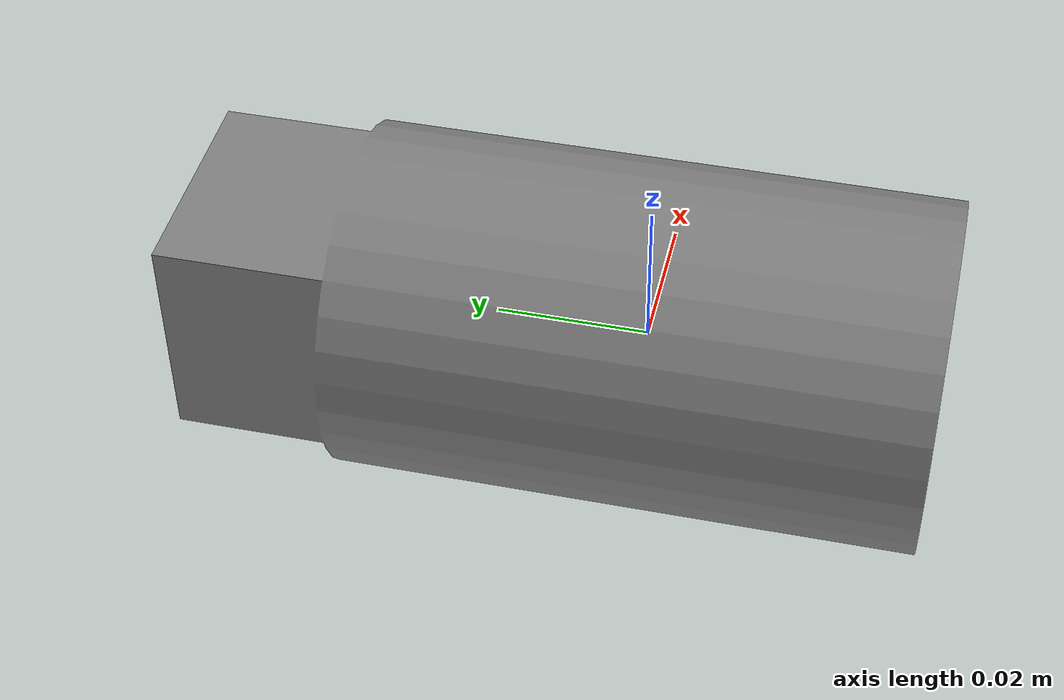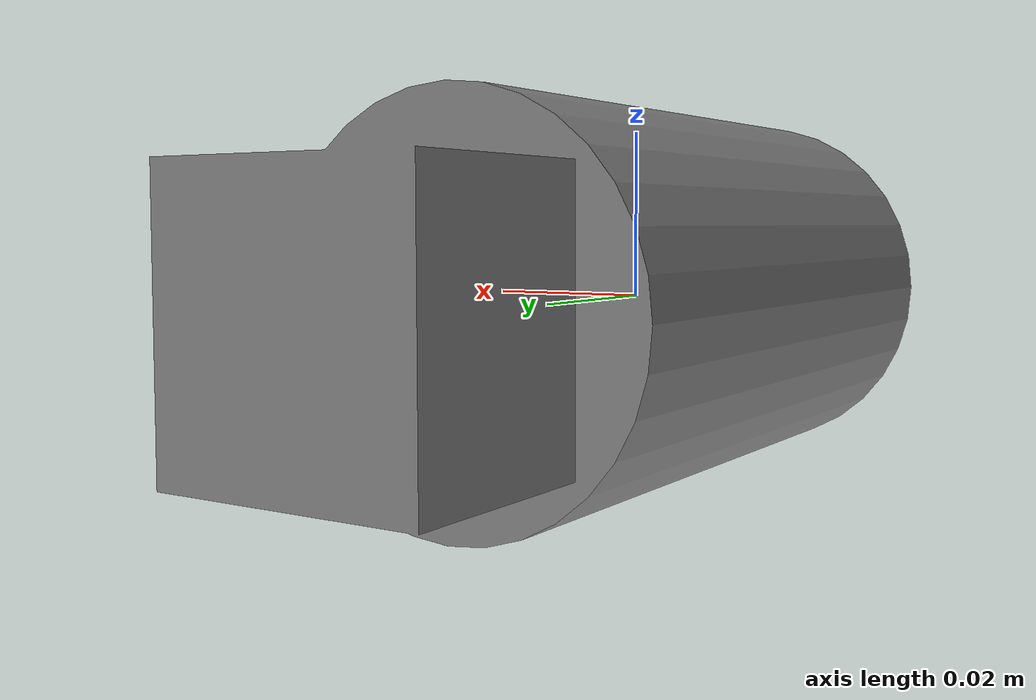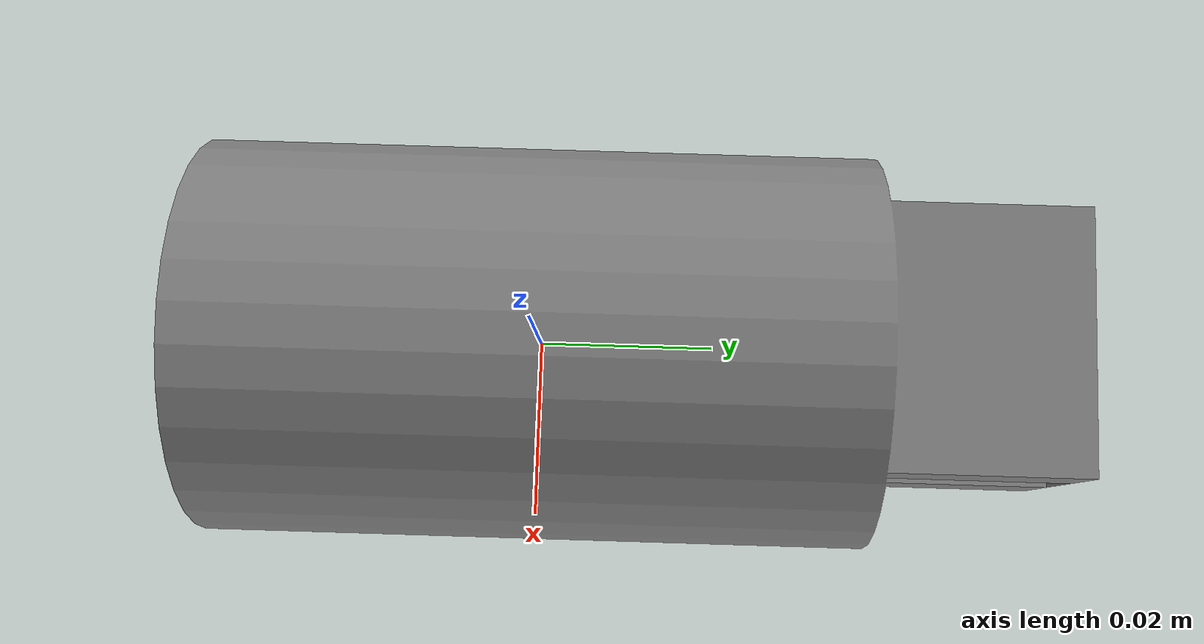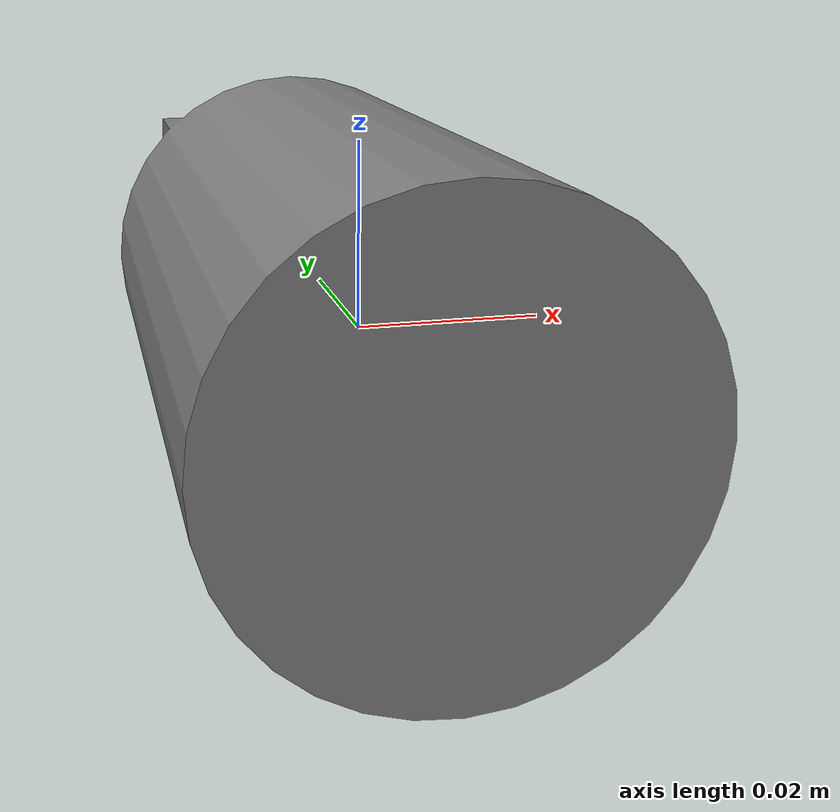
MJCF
<mujoco model="peg-hole">
	<default>
		<default class="visual">
			<geom type="mesh" contype="0" conaffinity="0"/>
		</default>
		<default class="collision">
			<geom type="mesh" rgba="0.5 0.5 0.5 0.0" density="100"/>
		</default>
	</default>
	<asset>
		<mesh name="U_peg_visual" file="meshes/U_cylinder-thin_cap.obj" scale="1.00 1.00 1.00"/>
		<mesh name="U_peg_0" file="meshes/collision_meshes/U_cylinder-thin_cap_decomp_0.obj" scale="1.00 1.00 1.00"/>
		<mesh name="U_peg_1" file="meshes/collision_meshes/U_cylinder-thin_cap_decomp_1.obj" scale="1.00 1.00 1.00"/>
		<mesh name="U_peg_2" file="meshes/collision_meshes/U_cylinder-thin_cap_decomp_2.obj" scale="1.00 1.00 1.00"/>
		<mesh name="U_peg_3" file="meshes/collision_meshes/U_cylinder-thin_cap_decomp_3.obj" scale="1.00 1.00 1.00"/>
		<mesh name="U_peg_4" file="meshes/collision_meshes/U_cylinder-thin_cap_decomp_4.obj" scale="1.00 1.00 1.00"/>
		<mesh name="U_peg_5" file="meshes/collision_meshes/U_cylinder-thin_cap_decomp_5.obj" scale="1.00 1.00 1.00"/>
	</asset>
	<worldbody>
		<body name="U_peg">
			<body name="object">
				<geom name="U_peg_0" class="collision" friction="0.01 0.3 0.0001" mesh="U_peg_0" group="0"/>
				<geom name="U_peg_1" class="collision" friction="0.01 0.3 0.0001" mesh="U_peg_1" group="0"/>
				<geom name="U_peg_2" class="collision" friction="0.01 0.3 0.0001" mesh="U_peg_2" group="0"/>
				<geom name="U_peg_3" class="collision" friction="0.01 0.3 0.0001" mesh="U_peg_3" group="0"/>
				<geom name="U_peg_4" class="collision" friction="0.01 0.3 0.0001" mesh="U_peg_4" group="0"/>
				<geom name="U_peg_5" class="collision" friction="0.01 0.3 0.0001" mesh="U_peg_5" group="0"/>
				<geom name="U_peg_visual" class="visual" mesh="U_peg_visual" group="1"/>
			</body>
			<site rgba="0 0 0 0" size="0.005" pos="0 0 0" name="bottom_site"/>
			<site rgba="0 0 0 0" size="0.005" pos="0 0 0" name="top_site"/>
			<site rgba="0 0 0 0" size="0.005" pos="0 0 0" name="horizontal_radius_site"/>
		</body>
	</worldbody>
</mujoco>
